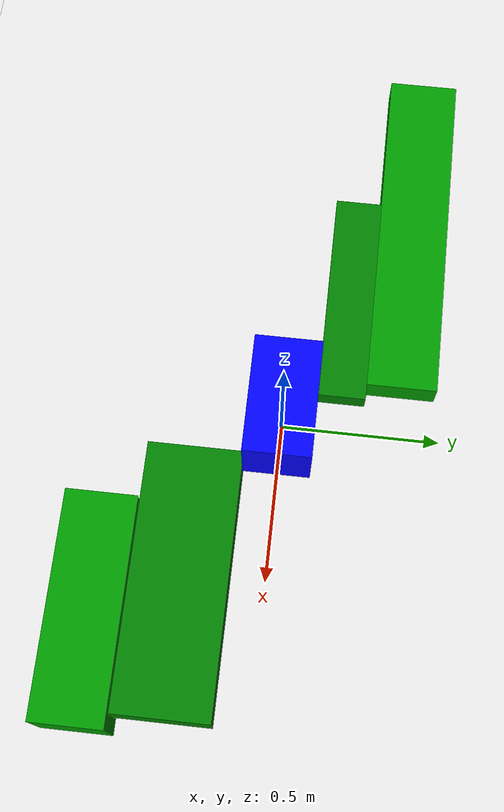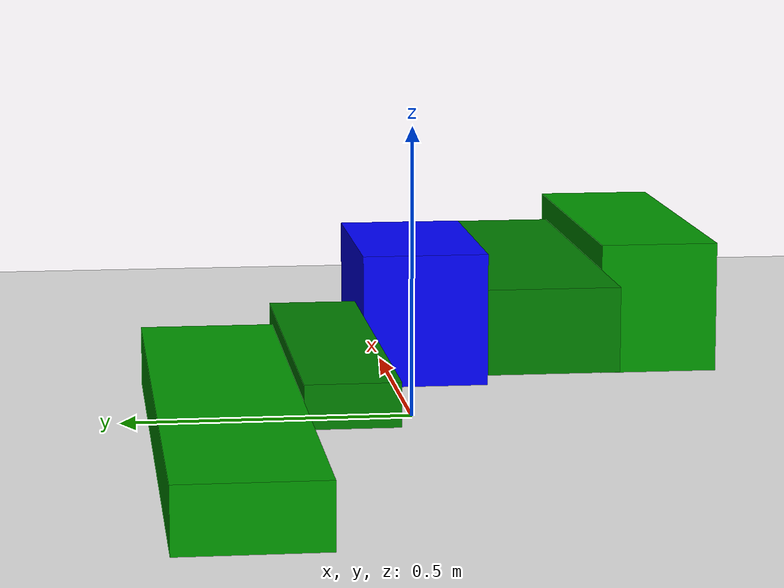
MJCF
<mujoco>
    <worldbody>
    <light diffuse=".5 .5 .5" pos="0 0 3" dir="0 0 -1"/>
    <geom type="plane" size="5 5 0.1" rgba=".9 0.9 0.9 1"/>
    <body name="main body" pos="0 0 .2">
        <joint type="free"/>
        <geom type="box" size="0.1823618432185498 0.10347852472478945 0.10960618824937188" rgba="0 0 1 1" mass="1"/>
        <site name="marker" pos="0 0 0" size="0.05"/>
        <site name="robot_center" pos="0 0 0" size="0.01"/>
        <body name="left_leg1" pos="-0.38 0.17568686164348235 -0.022576414933108902">
            <joint name="left_leg1_joint" type="hinge" axis="0 1 0" pos="0 0 0"/>
            <geom type="box" size="0.3332486218634467 0.0722083369186929 0.03376794284433009" rgba="0 .5 0 1" mass="1"/>
            <body name="left_leg2" pos="-0.2690561194642942 0.18088918517647234 -0.04">
                <joint name="left_leg2_joint" type="hinge" axis="0 1 0" pos="0 0 0"/>
                <geom type="box" size="0.5438253648545799 0.10868084825777946 0.04841911587997123" rgba="0 .6 0 1" mass="1"/>
            </body>
        </body>
        <body name="right_leg1" pos="0.5477422553256569 -0.2475361944180854 -0.08699737791904393">
            <joint name="right_leg1_joint" type="hinge" axis="0 1 0" pos="0 0 0"/>
            <geom type="box" size="0.39867213441717175 0.14405766969329595 0.07671716660083437" rgba="0 .5 0 1" mass="1"/>
            <body name="right_leg2" pos="0.1150039822423069 -0.2514764849952539 -0.00949160681908659">
                <joint name="right_leg2_joint" type="hinge" axis="0 1 0" pos="0 0 0"/>
                <geom type="box" size="0.33237558943717926 0.10741881530195795 0.1321931446438492" rgba="0 .6 0 1" mass="1"/>
            </body>
        </body>
    </body>
    </worldbody>
    <sensor>
        <framepos objtype="site" objname="marker"/>
        <velocimeter name="robot_velocity" site="robot_center"/>
    </sensor>
    <actuator>
        <position joint="left_leg1_joint" kp="10"/>
        <position joint="left_leg2_joint" kp="10"/>
        <position joint="right_leg1_joint" kp="10"/>
        <position joint="right_leg2_joint" kp="10"/>
    </actuator>
</mujoco>
